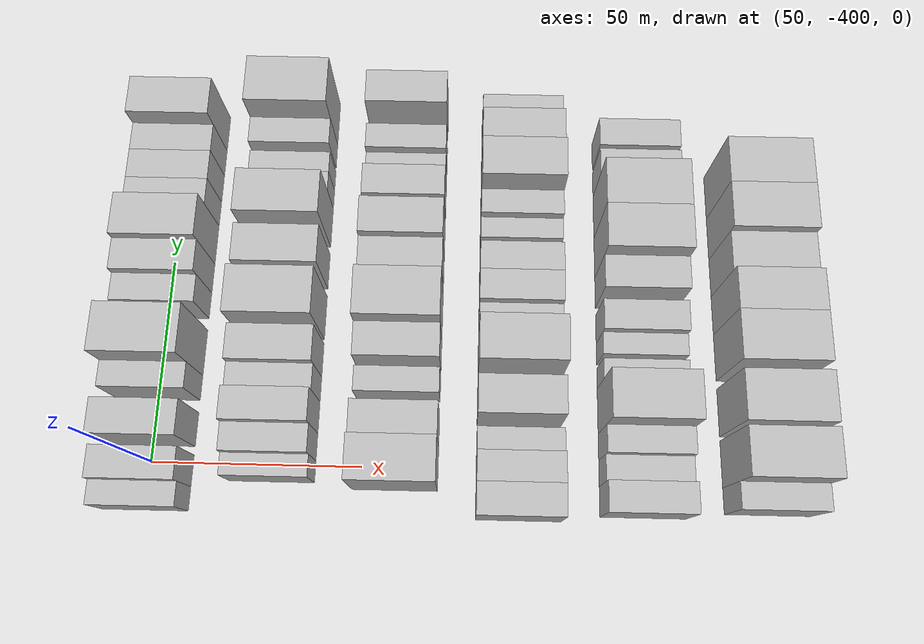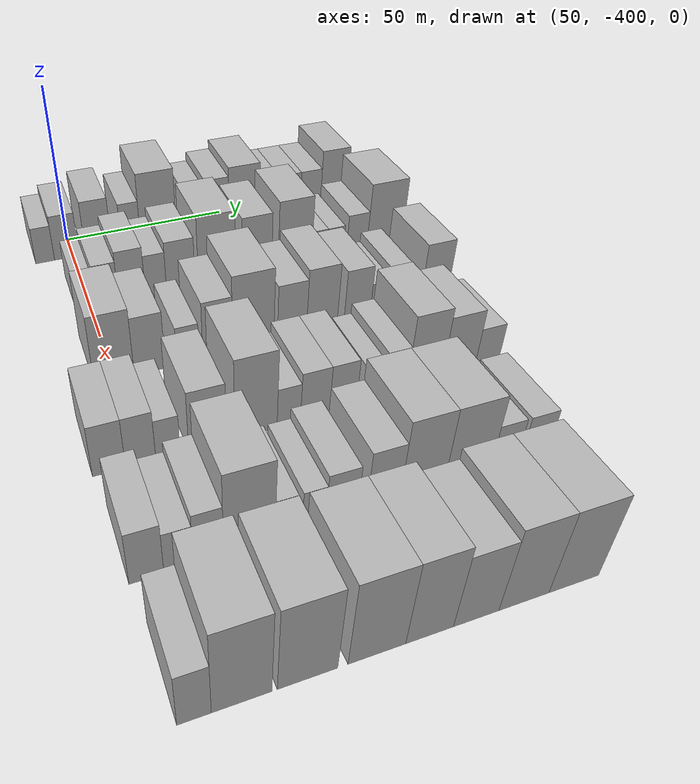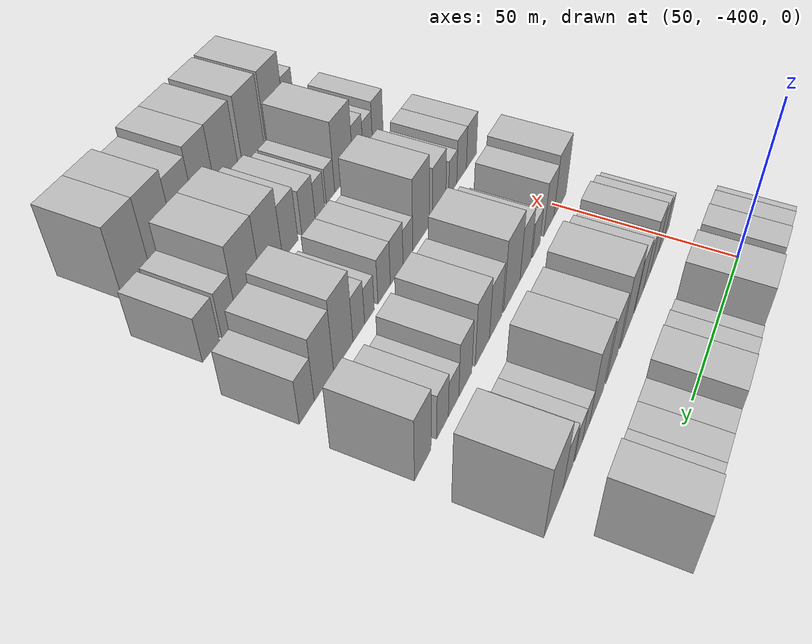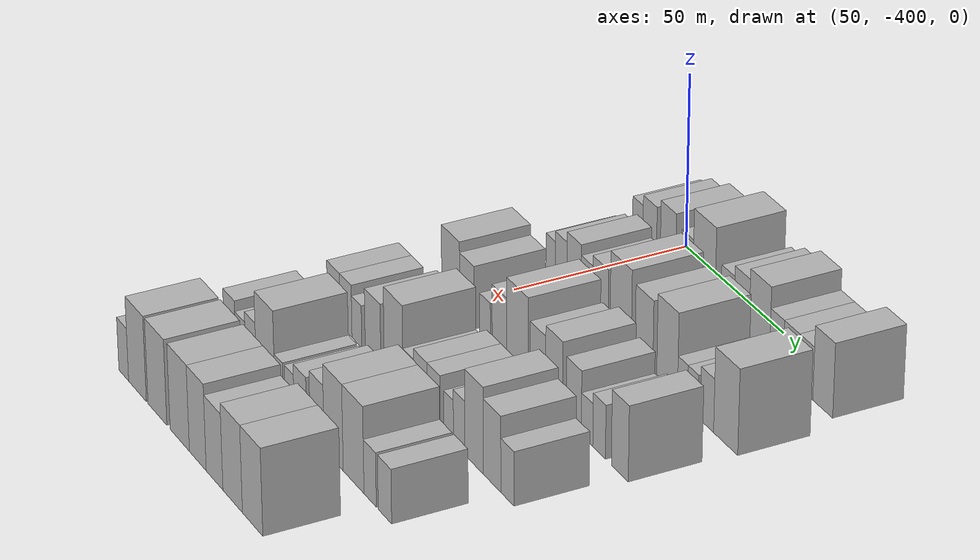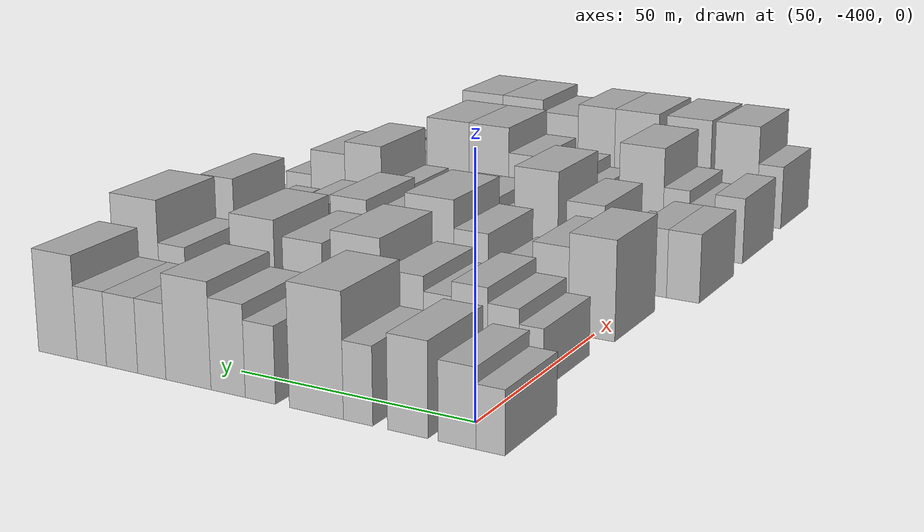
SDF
<sdf version="1.6">
 <world name="default">
  <model name="building_9">
   <static>1</static>
   <pose>50.0000 -408.2601 0 0.000000 0.000000 0.000000</pose>
   <link name="link">
    <pose>0 0 6.00 0 0 0</pose>
    <collision name="collision"><geometry><box><size>20.0000 5.6011 12.0000</size></box></geometry></collision>
    <visual name="visual">
     <cast_shadows>0</cast_shadows>
     <geometry><box><size>20.0000 5.6011 12.0000</size></box></geometry>
     <material>
      <script>
       <uri>model://HANNAS_wall/materials/scripts</uri>
       <uri>model://HANNAS_wall/materials/textures</uri>
       <name>vrc/HANNAS_wall</name>
      </script>
     </material>
    </visual>
   </link>
  </model>
  <model name="building_10">
   <static>1</static>
   <pose>50.0000 -401.7760 0 0.000000 0.000000 0.000000</pose>
   <link name="link">
    <pose>0 0 7.50 0 0 0</pose>
    <collision name="collision"><geometry><box><size>20.0000 7.3672 15.0000</size></box></geometry></collision>
    <visual name="visual">
     <cast_shadows>0</cast_shadows>
     <geometry><box><size>20.0000 7.3672 15.0000</size></box></geometry>
     <material>
      <script>
       <uri>model://HANNAS_wall/materials/scripts</uri>
       <uri>model://HANNAS_wall/materials/textures</uri>
       <name>vrc/HANNAS_wall</name>
      </script>
     </material>
    </visual>
   </link>
  </model>
  <model name="building_11">
   <static>1</static>
   <pose>50.0000 -392.0371 0 0.000000 0.000000 0.000000</pose>
   <link name="link">
    <pose>0 0 9.00 0 0 0</pose>
    <collision name="collision"><geometry><box><size>20.0000 8.1105 18.0000</size></box></geometry></collision>
    <visual name="visual">
     <cast_shadows>0</cast_shadows>
     <geometry><box><size>20.0000 8.1105 18.0000</size></box></geometry>
     <material>
      <script>
       <uri>model://HANNAS_wall/materials/scripts</uri>
       <uri>model://HANNAS_wall/materials/textures</uri>
       <name>vrc/HANNAS_wall</name>
      </script>
     </material>
    </visual>
   </link>
  </model>
  <model name="building_12">
   <static>1</static>
   <pose>50.0000 -381.9320 0 0.000000 0.000000 0.000000</pose>
   <link name="link">
    <pose>0 0 7.50 0 0 0</pose>
    <collision name="collision"><geometry><box><size>20.0000 6.0998 15.0000</size></box></geometry></collision>
    <visual name="visual">
     <cast_shadows>0</cast_shadows>
     <geometry><box><size>20.0000 6.0998 15.0000</size></box></geometry>
     <material>
      <script>
       <uri>model://HANNAS_wall/materials/scripts</uri>
       <uri>model://HANNAS_wall/materials/textures</uri>
       <name>vrc/HANNAS_wall</name>
      </script>
     </material>
    </visual>
   </link>
  </model>
  <model name="building_13">
   <static>1</static>
   <pose>50.0000 -373.1637 0 0.000000 0.000000 0.000000</pose>
   <link name="link">
    <pose>0 0 12.00 0 0 0</pose>
    <collision name="collision"><geometry><box><size>20.0000 11.4367 24.0000</size></box></geometry></collision>
    <visual name="visual">
     <cast_shadows>0</cast_shadows>
     <geometry><box><size>20.0000 11.4367 24.0000</size></box></geometry>
     <material>
      <script>
       <uri>model://HANNAS_wall/materials/scripts</uri>
       <uri>model://HANNAS_wall/materials/textures</uri>
       <name>vrc/HANNAS_wall</name>
      </script>
     </material>
    </visual>
   </link>
  </model>
  <model name="building_14">
   <static>1</static>
   <pose>50.0000 -361.1262 0 0.000000 0.000000 0.000000</pose>
   <link name="link">
    <pose>0 0 7.50 0 0 0</pose>
    <collision name="collision"><geometry><box><size>20.0000 6.6384 15.0000</size></box></geometry></collision>
    <visual name="visual">
     <cast_shadows>0</cast_shadows>
     <geometry><box><size>20.0000 6.6384 15.0000</size></box></geometry>
     <material>
      <script>
       <uri>model://HANNAS_wall/materials/scripts</uri>
       <uri>model://HANNAS_wall/materials/textures</uri>
       <name>vrc/HANNAS_wall</name>
      </script>
     </material>
    </visual>
   </link>
  </model>
  <model name="building_15">
   <static>1</static>
   <pose>50.0000 -353.9761 0 0.000000 0.000000 0.000000</pose>
   <link name="link">
    <pose>0 0 9.00 0 0 0</pose>
    <collision name="collision"><geometry><box><size>20.0000 7.6617 18.0000</size></box></geometry></collision>
    <visual name="visual">
     <cast_shadows>0</cast_shadows>
     <geometry><box><size>20.0000 7.6617 18.0000</size></box></geometry>
     <material>
      <script>
       <uri>model://HANNAS_wall/materials/scripts</uri>
       <uri>model://HANNAS_wall/materials/textures</uri>
       <name>vrc/HANNAS_wall</name>
      </script>
     </material>
    </visual>
   </link>
  </model>
  <model name="building_16">
   <static>1</static>
   <pose>50.0000 -344.9785 0 0.000000 0.000000 0.000000</pose>
   <link name="link">
    <pose>0 0 10.50 0 0 0</pose>
    <collision name="collision"><geometry><box><size>20.0000 10.3335 21.0000</size></box></geometry></collision>
    <visual name="visual">
     <cast_shadows>0</cast_shadows>
     <geometry><box><size>20.0000 10.3335 21.0000</size></box></geometry>
     <material>
      <script>
       <uri>model://HANNAS_wall/materials/scripts</uri>
       <uri>model://HANNAS_wall/materials/textures</uri>
       <name>vrc/HANNAS_wall</name>
      </script>
     </material>
    </visual>
   </link>
  </model>
  <model name="building_17">
   <static>1</static>
   <pose>50.0000 -336.5088 0 0.000000 0.000000 0.000000</pose>
   <link name="link">
    <pose>0 0 7.50 0 0 0</pose>
    <collision name="collision"><geometry><box><size>20.0000 6.6061 15.0000</size></box></geometry></collision>
    <visual name="visual">
     <cast_shadows>0</cast_shadows>
     <geometry><box><size>20.0000 6.6061 15.0000</size></box></geometry>
     <material>
      <script>
       <uri>model://HANNAS_wall/materials/scripts</uri>
       <uri>model://HANNAS_wall/materials/textures</uri>
       <name>vrc/HANNAS_wall</name>
      </script>
     </material>
    </visual>
   </link>
  </model>
  <model name="building_18">
   <static>1</static>
   <pose>50.0000 -329.4688 0 0.000000 0.000000 0.000000</pose>
   <link name="link">
    <pose>0 0 7.50 0 0 0</pose>
    <collision name="collision"><geometry><box><size>20.0000 7.4738 15.0000</size></box></geometry></collision>
    <visual name="visual">
     <cast_shadows>0</cast_shadows>
     <geometry><box><size>20.0000 7.4738 15.0000</size></box></geometry>
     <material>
      <script>
       <uri>model://HANNAS_wall/materials/scripts</uri>
       <uri>model://HANNAS_wall/materials/textures</uri>
       <name>vrc/HANNAS_wall</name>
      </script>
     </material>
    </visual>
   </link>
  </model>
  <model name="building_19">
   <static>1</static>
   <pose>50.0000 -322.1646 0 0.000000 0.000000 0.000000</pose>
   <link name="link">
    <pose>0 0 7.50 0 0 0</pose>
    <collision name="collision"><geometry><box><size>20.0000 7.1347 15.0000</size></box></geometry></collision>
    <visual name="visual">
     <cast_shadows>0</cast_shadows>
     <geometry><box><size>20.0000 7.1347 15.0000</size></box></geometry>
     <material>
      <script>
       <uri>model://HANNAS_wall/materials/scripts</uri>
       <uri>model://HANNAS_wall/materials/textures</uri>
       <name>vrc/HANNAS_wall</name>
      </script>
     </material>
    </visual>
   </link>
  </model>
  <model name="building_20">
   <static>1</static>
   <pose>50.0000 -313.8175 0 0.000000 0.000000 0.000000</pose>
   <link name="link">
    <pose>0 0 10.50 0 0 0</pose>
    <collision name="collision"><geometry><box><size>20.0000 9.5596 21.0000</size></box></geometry></collision>
    <visual name="visual">
     <cast_shadows>0</cast_shadows>
     <geometry><box><size>20.0000 9.5596 21.0000</size></box></geometry>
     <material>
      <script>
       <uri>model://HANNAS_wall/materials/scripts</uri>
       <uri>model://HANNAS_wall/materials/textures</uri>
       <name>vrc/HANNAS_wall</name>
      </script>
     </material>
    </visual>
   </link>
  </model>
  <model name="building_130">
   <static>1</static>
   <pose>79.0000 -401.3799 0 0.000000 0.000000 0.000000</pose>
   <link name="link">
    <pose>0 0 6.00 0 0 0</pose>
    <collision name="collision"><geometry><box><size>20.0000 5.0976 12.0000</size></box></geometry></collision>
    <visual name="visual">
     <cast_shadows>0</cast_shadows>
     <geometry><box><size>20.0000 5.0976 12.0000</size></box></geometry>
     <material>
      <script>
       <uri>model://HANNAS_wall/materials/scripts</uri>
       <uri>model://HANNAS_wall/materials/textures</uri>
       <name>vrc/HANNAS_wall</name>
      </script>
     </material>
    </visual>
   </link>
  </model>
  <model name="building_131">
   <static>1</static>
   <pose>79.0000 -395.5734 0 0.000000 0.000000 0.000000</pose>
   <link name="link">
    <pose>0 0 7.50 0 0 0</pose>
    <collision name="collision"><geometry><box><size>20.0000 6.5154 15.0000</size></box></geometry></collision>
    <visual name="visual">
     <cast_shadows>0</cast_shadows>
     <geometry><box><size>20.0000 6.5154 15.0000</size></box></geometry>
     <material>
      <script>
       <uri>model://HANNAS_wall/materials/scripts</uri>
       <uri>model://HANNAS_wall/materials/textures</uri>
       <name>vrc/HANNAS_wall</name>
      </script>
     </material>
    </visual>
   </link>
  </model>
  <model name="building_132">
   <static>1</static>
   <pose>79.0000 -388.5031 0 0.000000 0.000000 0.000000</pose>
   <link name="link">
    <pose>0 0 9.00 0 0 0</pose>
    <collision name="collision"><geometry><box><size>20.0000 7.6253 18.0000</size></box></geometry></collision>
    <visual name="visual">
     <cast_shadows>0</cast_shadows>
     <geometry><box><size>20.0000 7.6253 18.0000</size></box></geometry>
     <material>
      <script>
       <uri>model://HANNAS_wall/materials/scripts</uri>
       <uri>model://HANNAS_wall/materials/textures</uri>
       <name>vrc/HANNAS_wall</name>
      </script>
     </material>
    </visual>
   </link>
  </model>
  <model name="building_133">
   <static>1</static>
   <pose>79.0000 -381.6436 0 0.000000 0.000000 0.000000</pose>
   <link name="link">
    <pose>0 0 7.50 0 0 0</pose>
    <collision name="collision"><geometry><box><size>20.0000 6.0936 15.0000</size></box></geometry></collision>
    <visual name="visual">
     <cast_shadows>0</cast_shadows>
     <geometry><box><size>20.0000 6.0936 15.0000</size></box></geometry>
     <material>
      <script>
       <uri>model://HANNAS_wall/materials/scripts</uri>
       <uri>model://HANNAS_wall/materials/textures</uri>
       <name>vrc/HANNAS_wall</name>
      </script>
     </material>
    </visual>
   </link>
  </model>
  <model name="building_134">
   <static>1</static>
   <pose>79.0000 -374.4014 0 0.000000 0.000000 0.000000</pose>
   <link name="link">
    <pose>0 0 9.00 0 0 0</pose>
    <collision name="collision"><geometry><box><size>20.0000 8.3909 18.0000</size></box></geometry></collision>
    <visual name="visual">
     <cast_shadows>0</cast_shadows>
     <geometry><box><size>20.0000 8.3909 18.0000</size></box></geometry>
     <material>
      <script>
       <uri>model://HANNAS_wall/materials/scripts</uri>
       <uri>model://HANNAS_wall/materials/textures</uri>
       <name>vrc/HANNAS_wall</name>
      </script>
     </material>
    </visual>
   </link>
  </model>
  <model name="building_135">
   <static>1</static>
   <pose>79.0000 -363.6429 0 0.000000 0.000000 0.000000</pose>
   <link name="link">
    <pose>0 0 12.00 0 0 0</pose>
    <collision name="collision"><geometry><box><size>20.0000 11.1259 24.0000</size></box></geometry></collision>
    <visual name="visual">
     <cast_shadows>0</cast_shadows>
     <geometry><box><size>20.0000 11.1259 24.0000</size></box></geometry>
     <material>
      <script>
       <uri>model://HANNAS_wall/materials/scripts</uri>
       <uri>model://HANNAS_wall/materials/textures</uri>
       <name>vrc/HANNAS_wall</name>
      </script>
     </material>
    </visual>
   </link>
  </model>
  <model name="building_136">
   <static>1</static>
   <pose>79.0000 -351.4932 0 0.000000 0.000000 0.000000</pose>
   <link name="link">
    <pose>0 0 10.50 0 0 0</pose>
    <collision name="collision"><geometry><box><size>20.0000 9.1736 21.0000</size></box></geometry></collision>
    <visual name="visual">
     <cast_shadows>0</cast_shadows>
     <geometry><box><size>20.0000 9.1736 21.0000</size></box></geometry>
     <material>
      <script>
       <uri>model://HANNAS_wall/materials/scripts</uri>
       <uri>model://HANNAS_wall/materials/textures</uri>
       <name>vrc/HANNAS_wall</name>
      </script>
     </material>
    </visual>
   </link>
  </model>
  <model name="building_137">
   <static>1</static>
   <pose>79.0000 -339.6219 0 0.000000 0.000000 0.000000</pose>
   <link name="link">
    <pose>0 0 12.00 0 0 0</pose>
    <collision name="collision"><geometry><box><size>20.0000 10.5691 24.0000</size></box></geometry></collision>
    <visual name="visual">
     <cast_shadows>0</cast_shadows>
     <geometry><box><size>20.0000 10.5691 24.0000</size></box></geometry>
     <material>
      <script>
       <uri>model://HANNAS_wall/materials/scripts</uri>
       <uri>model://HANNAS_wall/materials/textures</uri>
       <name>vrc/HANNAS_wall</name>
      </script>
     </material>
    </visual>
   </link>
  </model>
  <model name="building_138">
   <static>1</static>
   <pose>79.0000 -331.8390 0 0.000000 0.000000 0.000000</pose>
   <link name="link">
    <pose>0 0 6.00 0 0 0</pose>
    <collision name="collision"><geometry><box><size>20.0000 4.9967 12.0000</size></box></geometry></collision>
    <visual name="visual">
     <cast_shadows>0</cast_shadows>
     <geometry><box><size>20.0000 4.9967 12.0000</size></box></geometry>
     <material>
      <script>
       <uri>model://HANNAS_wall/materials/scripts</uri>
       <uri>model://HANNAS_wall/materials/textures</uri>
       <name>vrc/HANNAS_wall</name>
      </script>
     </material>
    </visual>
   </link>
  </model>
  <model name="building_139">
   <static>1</static>
   <pose>79.0000 -326.6675 0 0.000000 0.000000 0.000000</pose>
   <link name="link">
    <pose>0 0 6.00 0 0 0</pose>
    <collision name="collision"><geometry><box><size>20.0000 5.3463 12.0000</size></box></geometry></collision>
    <visual name="visual">
     <cast_shadows>0</cast_shadows>
     <geometry><box><size>20.0000 5.3463 12.0000</size></box></geometry>
     <material>
      <script>
       <uri>model://HANNAS_wall/materials/scripts</uri>
       <uri>model://HANNAS_wall/materials/textures</uri>
       <name>vrc/HANNAS_wall</name>
      </script>
     </material>
    </visual>
   </link>
  </model>
  <model name="building_140">
   <static>1</static>
   <pose>79.0000 -319.6446 0 0.000000 0.000000 0.000000</pose>
   <link name="link">
    <pose>0 0 7.50 0 0 0</pose>
    <collision name="collision"><geometry><box><size>20.0000 6.6995 15.0000</size></box></geometry></collision>
    <visual name="visual">
     <cast_shadows>0</cast_shadows>
     <geometry><box><size>20.0000 6.6995 15.0000</size></box></geometry>
     <material>
      <script>
       <uri>model://HANNAS_wall/materials/scripts</uri>
       <uri>model://HANNAS_wall/materials/textures</uri>
       <name>vrc/HANNAS_wall</name>
      </script>
     </material>
    </visual>
   </link>
  </model>
  <model name="building_141">
   <static>1</static>
   <pose>79.0000 -310.3852 0 0.000000 0.000000 0.000000</pose>
   <link name="link">
    <pose>0 0 12.00 0 0 0</pose>
    <collision name="collision"><geometry><box><size>20.0000 11.8192 24.0000</size></box></geometry></collision>
    <visual name="visual">
     <cast_shadows>0</cast_shadows>
     <geometry><box><size>20.0000 11.8192 24.0000</size></box></geometry>
     <material>
      <script>
       <uri>model://HANNAS_wall/materials/scripts</uri>
       <uri>model://HANNAS_wall/materials/textures</uri>
       <name>vrc/HANNAS_wall</name>
      </script>
     </material>
    </visual>
   </link>
  </model>
  <model name="building_245">
   <static>1</static>
   <pose>108.0000 -400.1757 0 0.000000 0.000000 0.000000</pose>
   <link name="link">
    <pose>0 0 10.50 0 0 0</pose>
    <collision name="collision"><geometry><box><size>20.0000 10.1768 21.0000</size></box></geometry></collision>
    <visual name="visual">
     <cast_shadows>0</cast_shadows>
     <geometry><box><size>20.0000 10.1768 21.0000</size></box></geometry>
     <material>
      <script>
       <uri>model://HANNAS_wall/materials/scripts</uri>
       <uri>model://HANNAS_wall/materials/textures</uri>
       <name>vrc/HANNAS_wall</name>
      </script>
     </material>
    </visual>
   </link>
  </model>
  <model name="building_246">
   <static>1</static>
   <pose>108.0000 -391.0714 0 0.000000 0.000000 0.000000</pose>
   <link name="link">
    <pose>0 0 9.00 0 0 0</pose>
    <collision name="collision"><geometry><box><size>20.0000 8.0319 18.0000</size></box></geometry></collision>
    <visual name="visual">
     <cast_shadows>0</cast_shadows>
     <geometry><box><size>20.0000 8.0319 18.0000</size></box></geometry>
     <material>
      <script>
       <uri>model://HANNAS_wall/materials/scripts</uri>
       <uri>model://HANNAS_wall/materials/textures</uri>
       <name>vrc/HANNAS_wall</name>
      </script>
     </material>
    </visual>
   </link>
  </model>
  <model name="building_247">
   <static>1</static>
   <pose>108.0000 -381.0678 0 0.000000 0.000000 0.000000</pose>
   <link name="link">
    <pose>0 0 6.00 0 0 0</pose>
    <collision name="collision"><geometry><box><size>20.0000 5.9752 12.0000</size></box></geometry></collision>
    <visual name="visual">
     <cast_shadows>0</cast_shadows>
     <geometry><box><size>20.0000 5.9752 12.0000</size></box></geometry>
     <material>
      <script>
       <uri>model://HANNAS_wall/materials/scripts</uri>
       <uri>model://HANNAS_wall/materials/textures</uri>
       <name>vrc/HANNAS_wall</name>
      </script>
     </material>
    </visual>
   </link>
  </model>
  <model name="building_248">
   <static>1</static>
   <pose>108.0000 -373.0802 0 0.000000 0.000000 0.000000</pose>
   <link name="link">
    <pose>0 0 9.00 0 0 0</pose>
    <collision name="collision"><geometry><box><size>20.0000 8.0000 18.0000</size></box></geometry></collision>
    <visual name="visual">
     <cast_shadows>0</cast_shadows>
     <geometry><box><size>20.0000 8.0000 18.0000</size></box></geometry>
     <material>
      <script>
       <uri>model://HANNAS_wall/materials/scripts</uri>
       <uri>model://HANNAS_wall/materials/textures</uri>
       <name>vrc/HANNAS_wall</name>
      </script>
     </material>
    </visual>
   </link>
  </model>
  <model name="building_249">
   <static>1</static>
   <pose>108.0000 -363.3335 0 0.000000 0.000000 0.000000</pose>
   <link name="link">
    <pose>0 0 12.00 0 0 0</pose>
    <collision name="collision"><geometry><box><size>20.0000 11.4934 24.0000</size></box></geometry></collision>
    <visual name="visual">
     <cast_shadows>0</cast_shadows>
     <geometry><box><size>20.0000 11.4934 24.0000</size></box></geometry>
     <material>
      <script>
       <uri>model://HANNAS_wall/materials/scripts</uri>
       <uri>model://HANNAS_wall/materials/textures</uri>
       <name>vrc/HANNAS_wall</name>
      </script>
     </material>
    </visual>
   </link>
  </model>
  <model name="building_250">
   <static>1</static>
   <pose>108.0000 -352.4519 0 0.000000 0.000000 0.000000</pose>
   <link name="link">
    <pose>0 0 9.00 0 0 0</pose>
    <collision name="collision"><geometry><box><size>20.0000 8.2698 18.0000</size></box></geometry></collision>
    <visual name="visual">
     <cast_shadows>0</cast_shadows>
     <geometry><box><size>20.0000 8.2698 18.0000</size></box></geometry>
     <material>
      <script>
       <uri>model://HANNAS_wall/materials/scripts</uri>
       <uri>model://HANNAS_wall/materials/textures</uri>
       <name>vrc/HANNAS_wall</name>
      </script>
     </material>
    </visual>
   </link>
  </model>
  <model name="building_251">
   <static>1</static>
   <pose>108.0000 -343.8564 0 0.000000 0.000000 0.000000</pose>
   <link name="link">
    <pose>0 0 10.50 0 0 0</pose>
    <collision name="collision"><geometry><box><size>20.0000 8.9211 21.0000</size></box></geometry></collision>
    <visual name="visual">
     <cast_shadows>0</cast_shadows>
     <geometry><box><size>20.0000 8.9211 21.0000</size></box></geometry>
     <material>
      <script>
       <uri>model://HANNAS_wall/materials/scripts</uri>
       <uri>model://HANNAS_wall/materials/textures</uri>
       <name>vrc/HANNAS_wall</name>
      </script>
     </material>
    </visual>
   </link>
  </model>
  <model name="building_252">
   <static>1</static>
   <pose>108.0000 -333.5420 0 0.000000 0.000000 0.000000</pose>
   <link name="link">
    <pose>0 0 9.00 0 0 0</pose>
    <collision name="collision"><geometry><box><size>20.0000 7.7078 18.0000</size></box></geometry></collision>
    <visual name="visual">
     <cast_shadows>0</cast_shadows>
     <geometry><box><size>20.0000 7.7078 18.0000</size></box></geometry>
     <material>
      <script>
       <uri>model://HANNAS_wall/materials/scripts</uri>
       <uri>model://HANNAS_wall/materials/textures</uri>
       <name>vrc/HANNAS_wall</name>
      </script>
     </material>
    </visual>
   </link>
  </model>
  <model name="building_253">
   <static>1</static>
   <pose>108.0000 -326.7324 0 0.000000 0.000000 0.000000</pose>
   <link name="link">
    <pose>0 0 6.00 0 0 0</pose>
    <collision name="collision"><geometry><box><size>20.0000 5.9113 12.0000</size></box></geometry></collision>
    <visual name="visual">
     <cast_shadows>0</cast_shadows>
     <geometry><box><size>20.0000 5.9113 12.0000</size></box></geometry>
     <material>
      <script>
       <uri>model://HANNAS_wall/materials/scripts</uri>
       <uri>model://HANNAS_wall/materials/textures</uri>
       <name>vrc/HANNAS_wall</name>
      </script>
     </material>
    </visual>
   </link>
  </model>
  <model name="building_254">
   <static>1</static>
   <pose>108.0000 -320.5641 0 0.000000 0.000000 0.000000</pose>
   <link name="link">
    <pose>0 0 7.50 0 0 0</pose>
    <collision name="collision"><geometry><box><size>20.0000 6.4254 15.0000</size></box></geometry></collision>
    <visual name="visual">
     <cast_shadows>0</cast_shadows>
     <geometry><box><size>20.0000 6.4254 15.0000</size></box></geometry>
     <material>
      <script>
       <uri>model://HANNAS_wall/materials/scripts</uri>
       <uri>model://HANNAS_wall/materials/textures</uri>
       <name>vrc/HANNAS_wall</name>
      </script>
     </material>
    </visual>
   </link>
  </model>
  <model name="building_255">
   <static>1</static>
   <pose>108.0000 -310.1068 0 0.000000 0.000000 0.000000</pose>
   <link name="link">
    <pose>0 0 10.50 0 0 0</pose>
    <collision name="collision"><geometry><box><size>20.0000 8.4892 21.0000</size></box></geometry></collision>
    <visual name="visual">
     <cast_shadows>0</cast_shadows>
     <geometry><box><size>20.0000 8.4892 21.0000</size></box></geometry>
     <material>
      <script>
       <uri>model://HANNAS_wall/materials/scripts</uri>
       <uri>model://HANNAS_wall/materials/textures</uri>
       <name>vrc/HANNAS_wall</name>
      </script>
     </material>
    </visual>
   </link>
  </model>
  <model name="building_351">
   <static>1</static>
   <pose>137.0000 -407.8488 0 0.000000 0.000000 0.000000</pose>
   <link name="link">
    <pose>0 0 7.50 0 0 0</pose>
    <collision name="collision"><geometry><box><size>20.0000 7.3944 15.0000</size></box></geometry></collision>
    <visual name="visual">
     <cast_shadows>0</cast_shadows>
     <geometry><box><size>20.0000 7.3944 15.0000</size></box></geometry>
     <material>
      <script>
       <uri>model://HANNAS_wall/materials/scripts</uri>
       <uri>model://HANNAS_wall/materials/textures</uri>
       <name>vrc/HANNAS_wall</name>
      </script>
     </material>
    </visual>
   </link>
  </model>
  <model name="building_352">
   <static>1</static>
   <pose>137.0000 -400.6861 0 0.000000 0.000000 0.000000</pose>
   <link name="link">
    <pose>0 0 7.50 0 0 0</pose>
    <collision name="collision"><geometry><box><size>20.0000 6.9310 15.0000</size></box></geometry></collision>
    <visual name="visual">
     <cast_shadows>0</cast_shadows>
     <geometry><box><size>20.0000 6.9310 15.0000</size></box></geometry>
     <material>
      <script>
       <uri>model://HANNAS_wall/materials/scripts</uri>
       <uri>model://HANNAS_wall/materials/textures</uri>
       <name>vrc/HANNAS_wall</name>
      </script>
     </material>
    </visual>
   </link>
  </model>
  <model name="building_353">
   <static>1</static>
   <pose>137.0000 -394.3845 0 0.000000 0.000000 0.000000</pose>
   <link name="link">
    <pose>0 0 6.00 0 0 0</pose>
    <collision name="collision"><geometry><box><size>20.0000 5.6721 12.0000</size></box></geometry></collision>
    <visual name="visual">
     <cast_shadows>0</cast_shadows>
     <geometry><box><size>20.0000 5.6721 12.0000</size></box></geometry>
     <material>
      <script>
       <uri>model://HANNAS_wall/materials/scripts</uri>
       <uri>model://HANNAS_wall/materials/textures</uri>
       <name>vrc/HANNAS_wall</name>
      </script>
     </material>
    </visual>
   </link>
  </model>
  <model name="building_354">
   <static>1</static>
   <pose>137.0000 -385.0891 0 0.000000 0.000000 0.000000</pose>
   <link name="link">
    <pose>0 0 9.00 0 0 0</pose>
    <collision name="collision"><geometry><box><size>20.0000 8.9188 18.0000</size></box></geometry></collision>
    <visual name="visual">
     <cast_shadows>0</cast_shadows>
     <geometry><box><size>20.0000 8.9188 18.0000</size></box></geometry>
     <material>
      <script>
       <uri>model://HANNAS_wall/materials/scripts</uri>
       <uri>model://HANNAS_wall/materials/textures</uri>
       <name>vrc/HANNAS_wall</name>
      </script>
     </material>
    </visual>
   </link>
  </model>
  <model name="building_355">
   <static>1</static>
   <pose>137.0000 -373.3616 0 0.000000 0.000000 0.000000</pose>
   <link name="link">
    <pose>0 0 12.00 0 0 0</pose>
    <collision name="collision"><geometry><box><size>20.0000 10.5362 24.0000</size></box></geometry></collision>
    <visual name="visual">
     <cast_shadows>0</cast_shadows>
     <geometry><box><size>20.0000 10.5362 24.0000</size></box></geometry>
     <material>
      <script>
       <uri>model://HANNAS_wall/materials/scripts</uri>
       <uri>model://HANNAS_wall/materials/textures</uri>
       <name>vrc/HANNAS_wall</name>
      </script>
     </material>
    </visual>
   </link>
  </model>
  <model name="building_356">
   <static>1</static>
   <pose>137.0000 -365.1425 0 0.000000 0.000000 0.000000</pose>
   <link name="link">
    <pose>0 0 6.00 0 0 0</pose>
    <collision name="collision"><geometry><box><size>20.0000 5.9020 12.0000</size></box></geometry></collision>
    <visual name="visual">
     <cast_shadows>0</cast_shadows>
     <geometry><box><size>20.0000 5.9020 12.0000</size></box></geometry>
     <material>
      <script>
       <uri>model://HANNAS_wall/materials/scripts</uri>
       <uri>model://HANNAS_wall/materials/textures</uri>
       <name>vrc/HANNAS_wall</name>
      </script>
     </material>
    </visual>
   </link>
  </model>
  <model name="building_357">
   <static>1</static>
   <pose>137.0000 -358.4674 0 0.000000 0.000000 0.000000</pose>
   <link name="link">
    <pose>0 0 7.50 0 0 0</pose>
    <collision name="collision"><geometry><box><size>20.0000 7.4481 15.0000</size></box></geometry></collision>
    <visual name="visual">
     <cast_shadows>0</cast_shadows>
     <geometry><box><size>20.0000 7.4481 15.0000</size></box></geometry>
     <material>
      <script>
       <uri>model://HANNAS_wall/materials/scripts</uri>
       <uri>model://HANNAS_wall/materials/textures</uri>
       <name>vrc/HANNAS_wall</name>
      </script>
     </material>
    </visual>
   </link>
  </model>
  <model name="building_358">
   <static>1</static>
   <pose>137.0000 -351.2342 0 0.000000 0.000000 0.000000</pose>
   <link name="link">
    <pose>0 0 7.50 0 0 0</pose>
    <collision name="collision"><geometry><box><size>20.0000 7.0184 15.0000</size></box></geometry></collision>
    <visual name="visual">
     <cast_shadows>0</cast_shadows>
     <geometry><box><size>20.0000 7.0184 15.0000</size></box></geometry>
     <material>
      <script>
       <uri>model://HANNAS_wall/materials/scripts</uri>
       <uri>model://HANNAS_wall/materials/textures</uri>
       <name>vrc/HANNAS_wall</name>
      </script>
     </material>
    </visual>
   </link>
  </model>
  <model name="building_359">
   <static>1</static>
   <pose>137.0000 -343.1167 0 0.000000 0.000000 0.000000</pose>
   <link name="link">
    <pose>0 0 6.00 0 0 0</pose>
    <collision name="collision"><geometry><box><size>20.0000 5.2166 12.0000</size></box></geometry></collision>
    <visual name="visual">
     <cast_shadows>0</cast_shadows>
     <geometry><box><size>20.0000 5.2166 12.0000</size></box></geometry>
     <material>
      <script>
       <uri>model://HANNAS_wall/materials/scripts</uri>
       <uri>model://HANNAS_wall/materials/textures</uri>
       <name>vrc/HANNAS_wall</name>
      </script>
     </material>
    </visual>
   </link>
  </model>
  <model name="building_360">
   <static>1</static>
   <pose>137.0000 -337.4367 0 0.000000 0.000000 0.000000</pose>
   <link name="link">
    <pose>0 0 7.50 0 0 0</pose>
    <collision name="collision"><geometry><box><size>20.0000 6.1435 15.0000</size></box></geometry></collision>
    <visual name="visual">
     <cast_shadows>0</cast_shadows>
     <geometry><box><size>20.0000 6.1435 15.0000</size></box></geometry>
     <material>
      <script>
       <uri>model://HANNAS_wall/materials/scripts</uri>
       <uri>model://HANNAS_wall/materials/textures</uri>
       <name>vrc/HANNAS_wall</name>
      </script>
     </material>
    </visual>
   </link>
  </model>
  <model name="building_361">
   <static>1</static>
   <pose>137.0000 -329.5167 0 0.000000 0.000000 0.000000</pose>
   <link name="link">
    <pose>0 0 12.00 0 0 0</pose>
    <collision name="collision"><geometry><box><size>20.0000 9.6964 24.0000</size></box></geometry></collision>
    <visual name="visual">
     <cast_shadows>0</cast_shadows>
     <geometry><box><size>20.0000 9.6964 24.0000</size></box></geometry>
     <material>
      <script>
       <uri>model://HANNAS_wall/materials/scripts</uri>
       <uri>model://HANNAS_wall/materials/textures</uri>
       <name>vrc/HANNAS_wall</name>
      </script>
     </material>
    </visual>
   </link>
  </model>
  <model name="building_362">
   <static>1</static>
   <pose>137.0000 -320.0607 0 0.000000 0.000000 0.000000</pose>
   <link name="link">
    <pose>0 0 10.50 0 0 0</pose>
    <collision name="collision"><geometry><box><size>20.0000 9.2155 21.0000</size></box></geometry></collision>
    <visual name="visual">
     <cast_shadows>0</cast_shadows>
     <geometry><box><size>20.0000 9.2155 21.0000</size></box></geometry>
     <material>
      <script>
       <uri>model://HANNAS_wall/materials/scripts</uri>
       <uri>model://HANNAS_wall/materials/textures</uri>
       <name>vrc/HANNAS_wall</name>
      </script>
     </material>
    </visual>
   </link>
  </model>
  <model name="building_363">
   <static>1</static>
   <pose>137.0000 -312.0235 0 0.000000 0.000000 0.000000</pose>
   <link name="link">
    <pose>0 0 7.50 0 0 0</pose>
    <collision name="collision"><geometry><box><size>20.0000 6.8590 15.0000</size></box></geometry></collision>
    <visual name="visual">
     <cast_shadows>0</cast_shadows>
     <geometry><box><size>20.0000 6.8590 15.0000</size></box></geometry>
     <material>
      <script>
       <uri>model://HANNAS_wall/materials/scripts</uri>
       <uri>model://HANNAS_wall/materials/textures</uri>
       <name>vrc/HANNAS_wall</name>
      </script>
     </material>
    </visual>
   </link>
  </model>
  <model name="building_475">
   <static>1</static>
   <pose>166.0000 -406.7862 0 0.000000 0.000000 0.000000</pose>
   <link name="link">
    <pose>0 0 7.50 0 0 0</pose>
    <collision name="collision"><geometry><box><size>20.0000 7.0014 15.0000</size></box></geometry></collision>
    <visual name="visual">
     <cast_shadows>0</cast_shadows>
     <geometry><box><size>20.0000 7.0014 15.0000</size></box></geometry>
     <material>
      <script>
       <uri>model://HANNAS_wall/materials/scripts</uri>
       <uri>model://HANNAS_wall/materials/textures</uri>
       <name>vrc/HANNAS_wall</name>
      </script>
     </material>
    </visual>
   </link>
  </model>
  <model name="building_476">
   <static>1</static>
   <pose>166.0000 -400.2884 0 0.000000 0.000000 0.000000</pose>
   <link name="link">
    <pose>0 0 6.00 0 0 0</pose>
    <collision name="collision"><geometry><box><size>20.0000 5.9940 12.0000</size></box></geometry></collision>
    <visual name="visual">
     <cast_shadows>0</cast_shadows>
     <geometry><box><size>20.0000 5.9940 12.0000</size></box></geometry>
     <material>
      <script>
       <uri>model://HANNAS_wall/materials/scripts</uri>
       <uri>model://HANNAS_wall/materials/textures</uri>
       <name>vrc/HANNAS_wall</name>
      </script>
     </material>
    </visual>
   </link>
  </model>
  <model name="building_477">
   <static>1</static>
   <pose>166.0000 -394.1436 0 0.000000 0.000000 0.000000</pose>
   <link name="link">
    <pose>0 0 7.50 0 0 0</pose>
    <collision name="collision"><geometry><box><size>20.0000 6.2955 15.0000</size></box></geometry></collision>
    <visual name="visual">
     <cast_shadows>0</cast_shadows>
     <geometry><box><size>20.0000 6.2955 15.0000</size></box></geometry>
     <material>
      <script>
       <uri>model://HANNAS_wall/materials/scripts</uri>
       <uri>model://HANNAS_wall/materials/textures</uri>
       <name>vrc/HANNAS_wall</name>
      </script>
     </material>
    </visual>
   </link>
  </model>
  <model name="building_478">
   <static>1</static>
   <pose>166.0000 -385.5102 0 0.000000 0.000000 0.000000</pose>
   <link name="link">
    <pose>0 0 12.00 0 0 0</pose>
    <collision name="collision"><geometry><box><size>20.0000 10.9713 24.0000</size></box></geometry></collision>
    <visual name="visual">
     <cast_shadows>0</cast_shadows>
     <geometry><box><size>20.0000 10.9713 24.0000</size></box></geometry>
     <material>
      <script>
       <uri>model://HANNAS_wall/materials/scripts</uri>
       <uri>model://HANNAS_wall/materials/textures</uri>
       <name>vrc/HANNAS_wall</name>
      </script>
     </material>
    </visual>
   </link>
  </model>
  <model name="building_479">
   <static>1</static>
   <pose>166.0000 -377.5611 0 0.000000 0.000000 0.000000</pose>
   <link name="link">
    <pose>0 0 6.00 0 0 0</pose>
    <collision name="collision"><geometry><box><size>20.0000 4.9270 12.0000</size></box></geometry></collision>
    <visual name="visual">
     <cast_shadows>0</cast_shadows>
     <geometry><box><size>20.0000 4.9270 12.0000</size></box></geometry>
     <material>
      <script>
       <uri>model://HANNAS_wall/materials/scripts</uri>
       <uri>model://HANNAS_wall/materials/textures</uri>
       <name>vrc/HANNAS_wall</name>
      </script>
     </material>
    </visual>
   </link>
  </model>
  <model name="building_480">
   <static>1</static>
   <pose>166.0000 -371.4558 0 0.000000 0.000000 0.000000</pose>
   <link name="link">
    <pose>0 0 6.00 0 0 0</pose>
    <collision name="collision"><geometry><box><size>20.0000 5.2837 12.0000</size></box></geometry></collision>
    <visual name="visual">
     <cast_shadows>0</cast_shadows>
     <geometry><box><size>20.0000 5.2837 12.0000</size></box></geometry>
     <material>
      <script>
       <uri>model://HANNAS_wall/materials/scripts</uri>
       <uri>model://HANNAS_wall/materials/textures</uri>
       <name>vrc/HANNAS_wall</name>
      </script>
     </material>
    </visual>
   </link>
  </model>
  <model name="building_481">
   <static>1</static>
   <pose>166.0000 -365.1996 0 0.000000 0.000000 0.000000</pose>
   <link name="link">
    <pose>0 0 7.50 0 0 0</pose>
    <collision name="collision"><geometry><box><size>20.0000 7.2287 15.0000</size></box></geometry></collision>
    <visual name="visual">
     <cast_shadows>0</cast_shadows>
     <geometry><box><size>20.0000 7.2287 15.0000</size></box></geometry>
     <material>
      <script>
       <uri>model://HANNAS_wall/materials/scripts</uri>
       <uri>model://HANNAS_wall/materials/textures</uri>
       <name>vrc/HANNAS_wall</name>
      </script>
     </material>
    </visual>
   </link>
  </model>
  <model name="building_482">
   <static>1</static>
   <pose>166.0000 -355.6492 0 0.000000 0.000000 0.000000</pose>
   <link name="link">
    <pose>0 0 9.00 0 0 0</pose>
    <collision name="collision"><geometry><box><size>20.0000 7.8721 18.0000</size></box></geometry></collision>
    <visual name="visual">
     <cast_shadows>0</cast_shadows>
     <geometry><box><size>20.0000 7.8721 18.0000</size></box></geometry>
     <material>
      <script>
       <uri>model://HANNAS_wall/materials/scripts</uri>
       <uri>model://HANNAS_wall/materials/textures</uri>
       <name>vrc/HANNAS_wall</name>
      </script>
     </material>
    </visual>
   </link>
  </model>
  <model name="building_483">
   <static>1</static>
   <pose>166.0000 -346.3902 0 0.000000 0.000000 0.000000</pose>
   <link name="link">
    <pose>0 0 12.00 0 0 0</pose>
    <collision name="collision"><geometry><box><size>20.0000 10.6459 24.0000</size></box></geometry></collision>
    <visual name="visual">
     <cast_shadows>0</cast_shadows>
     <geometry><box><size>20.0000 10.6459 24.0000</size></box></geometry>
     <material>
      <script>
       <uri>model://HANNAS_wall/materials/scripts</uri>
       <uri>model://HANNAS_wall/materials/textures</uri>
       <name>vrc/HANNAS_wall</name>
      </script>
     </material>
    </visual>
   </link>
  </model>
  <model name="building_484">
   <static>1</static>
   <pose>166.0000 -335.3430 0 0.000000 0.000000 0.000000</pose>
   <link name="link">
    <pose>0 0 12.00 0 0 0</pose>
    <collision name="collision"><geometry><box><size>20.0000 11.4484 24.0000</size></box></geometry></collision>
    <visual name="visual">
     <cast_shadows>0</cast_shadows>
     <geometry><box><size>20.0000 11.4484 24.0000</size></box></geometry>
     <material>
      <script>
       <uri>model://HANNAS_wall/materials/scripts</uri>
       <uri>model://HANNAS_wall/materials/textures</uri>
       <name>vrc/HANNAS_wall</name>
      </script>
     </material>
    </visual>
   </link>
  </model>
  <model name="building_485">
   <static>1</static>
   <pose>166.0000 -326.2760 0 0.000000 0.000000 0.000000</pose>
   <link name="link">
    <pose>0 0 7.50 0 0 0</pose>
    <collision name="collision"><geometry><box><size>20.0000 6.6856 15.0000</size></box></geometry></collision>
    <visual name="visual">
     <cast_shadows>0</cast_shadows>
     <geometry><box><size>20.0000 6.6856 15.0000</size></box></geometry>
     <material>
      <script>
       <uri>model://HANNAS_wall/materials/scripts</uri>
       <uri>model://HANNAS_wall/materials/textures</uri>
       <name>vrc/HANNAS_wall</name>
      </script>
     </material>
    </visual>
   </link>
  </model>
  <model name="building_486">
   <static>1</static>
   <pose>166.0000 -318.3118 0 0.000000 0.000000 0.000000</pose>
   <link name="link">
    <pose>0 0 7.50 0 0 0</pose>
    <collision name="collision"><geometry><box><size>20.0000 7.2429 15.0000</size></box></geometry></collision>
    <visual name="visual">
     <cast_shadows>0</cast_shadows>
     <geometry><box><size>20.0000 7.2429 15.0000</size></box></geometry>
     <material>
      <script>
       <uri>model://HANNAS_wall/materials/scripts</uri>
       <uri>model://HANNAS_wall/materials/textures</uri>
       <name>vrc/HANNAS_wall</name>
      </script>
     </material>
    </visual>
   </link>
  </model>
  <model name="building_598">
   <static>1</static>
   <pose>195.0000 -405.9857 0 0.000000 0.000000 0.000000</pose>
   <link name="link">
    <pose>0 0 7.50 0 0 0</pose>
    <collision name="collision"><geometry><box><size>20.0000 6.0960 15.0000</size></box></geometry></collision>
    <visual name="visual">
     <cast_shadows>0</cast_shadows>
     <geometry><box><size>20.0000 6.0960 15.0000</size></box></geometry>
     <material>
      <script>
       <uri>model://HANNAS_wall/materials/scripts</uri>
       <uri>model://HANNAS_wall/materials/textures</uri>
       <name>vrc/HANNAS_wall</name>
      </script>
     </material>
    </visual>
   </link>
  </model>
  <model name="building_599">
   <static>1</static>
   <pose>195.0000 -397.4342 0 0.000000 0.000000 0.000000</pose>
   <link name="link">
    <pose>0 0 12.00 0 0 0</pose>
    <collision name="collision"><geometry><box><size>20.0000 11.0071 24.0000</size></box></geometry></collision>
    <visual name="visual">
     <cast_shadows>0</cast_shadows>
     <geometry><box><size>20.0000 11.0071 24.0000</size></box></geometry>
     <material>
      <script>
       <uri>model://HANNAS_wall/materials/scripts</uri>
       <uri>model://HANNAS_wall/materials/textures</uri>
       <name>vrc/HANNAS_wall</name>
      </script>
     </material>
    </visual>
   </link>
  </model>
  <model name="building_600">
   <static>1</static>
   <pose>195.0000 -385.1800 0 0.000000 0.000000 0.000000</pose>
   <link name="link">
    <pose>0 0 12.00 0 0 0</pose>
    <collision name="collision"><geometry><box><size>20.0000 11.5013 24.0000</size></box></geometry></collision>
    <visual name="visual">
     <cast_shadows>0</cast_shadows>
     <geometry><box><size>20.0000 11.5013 24.0000</size></box></geometry>
     <material>
      <script>
       <uri>model://HANNAS_wall/materials/scripts</uri>
       <uri>model://HANNAS_wall/materials/textures</uri>
       <name>vrc/HANNAS_wall</name>
      </script>
     </material>
    </visual>
   </link>
  </model>
  <model name="building_601">
   <static>1</static>
   <pose>195.0000 -371.6603 0 0.000000 0.000000 0.000000</pose>
   <link name="link">
    <pose>0 0 12.00 0 0 0</pose>
    <collision name="collision"><geometry><box><size>20.0000 11.5382 24.0000</size></box></geometry></collision>
    <visual name="visual">
     <cast_shadows>0</cast_shadows>
     <geometry><box><size>20.0000 11.5382 24.0000</size></box></geometry>
     <material>
      <script>
       <uri>model://HANNAS_wall/materials/scripts</uri>
       <uri>model://HANNAS_wall/materials/textures</uri>
       <name>vrc/HANNAS_wall</name>
      </script>
     </material>
    </visual>
   </link>
  </model>
  <model name="building_602">
   <static>1</static>
   <pose>195.0000 -360.9273 0 0.000000 0.000000 0.000000</pose>
   <link name="link">
    <pose>0 0 12.00 0 0 0</pose>
    <collision name="collision"><geometry><box><size>20.0000 9.9279 24.0000</size></box></geometry></collision>
    <visual name="visual">
     <cast_shadows>0</cast_shadows>
     <geometry><box><size>20.0000 9.9279 24.0000</size></box></geometry>
     <material>
      <script>
       <uri>model://HANNAS_wall/materials/scripts</uri>
       <uri>model://HANNAS_wall/materials/textures</uri>
       <name>vrc/HANNAS_wall</name>
      </script>
     </material>
    </visual>
   </link>
  </model>
  <model name="building_603">
   <static>1</static>
   <pose>195.0000 -351.0900 0 0.000000 0.000000 0.000000</pose>
   <link name="link">
    <pose>0 0 10.50 0 0 0</pose>
    <collision name="collision"><geometry><box><size>20.0000 9.7467 21.0000</size></box></geometry></collision>
    <visual name="visual">
     <cast_shadows>0</cast_shadows>
     <geometry><box><size>20.0000 9.7467 21.0000</size></box></geometry>
     <material>
      <script>
       <uri>model://HANNAS_wall/materials/scripts</uri>
       <uri>model://HANNAS_wall/materials/textures</uri>
       <name>vrc/HANNAS_wall</name>
      </script>
     </material>
    </visual>
   </link>
  </model>
  <model name="building_604">
   <static>1</static>
   <pose>195.0000 -340.6237 0 0.000000 0.000000 0.000000</pose>
   <link name="link">
    <pose>0 0 12.00 0 0 0</pose>
    <collision name="collision"><geometry><box><size>20.0000 11.1860 24.0000</size></box></geometry></collision>
    <visual name="visual">
     <cast_shadows>0</cast_shadows>
     <geometry><box><size>20.0000 11.1860 24.0000</size></box></geometry>
     <material>
      <script>
       <uri>model://HANNAS_wall/materials/scripts</uri>
       <uri>model://HANNAS_wall/materials/textures</uri>
       <name>vrc/HANNAS_wall</name>
      </script>
     </material>
    </visual>
   </link>
  </model>
  <model name="building_605">
   <static>1</static>
   <pose>195.0000 -329.2817 0 0.000000 0.000000 0.000000</pose>
   <link name="link">
    <pose>0 0 12.00 0 0 0</pose>
    <collision name="collision"><geometry><box><size>20.0000 11.4979 24.0000</size></box></geometry></collision>
    <visual name="visual">
     <cast_shadows>0</cast_shadows>
     <geometry><box><size>20.0000 11.4979 24.0000</size></box></geometry>
     <material>
      <script>
       <uri>model://HANNAS_wall/materials/scripts</uri>
       <uri>model://HANNAS_wall/materials/textures</uri>
       <name>vrc/HANNAS_wall</name>
      </script>
     </material>
    </visual>
   </link>
  </model>
 </world>
</sdf>
